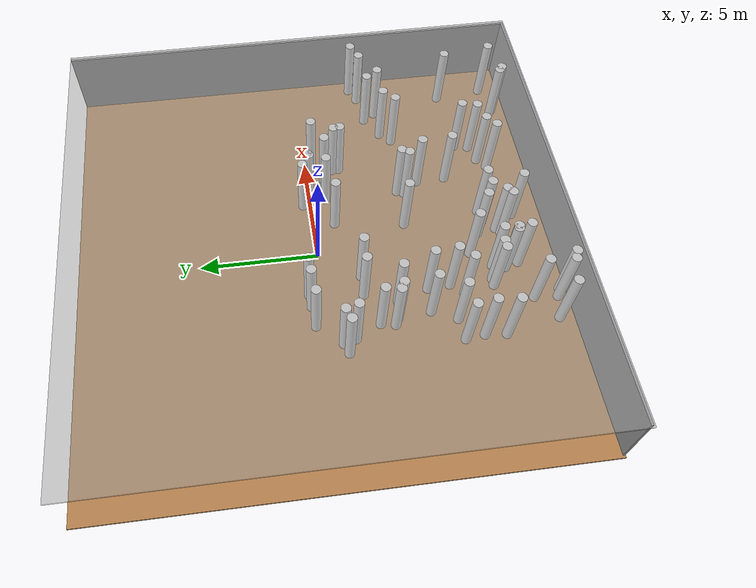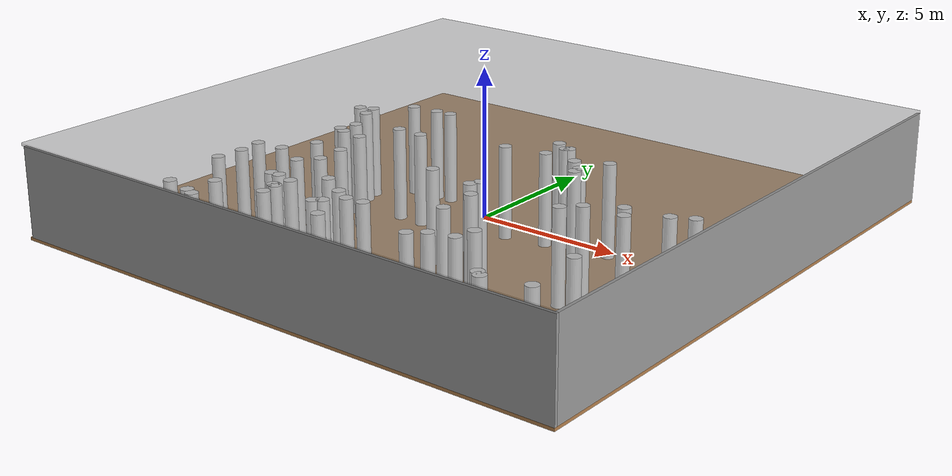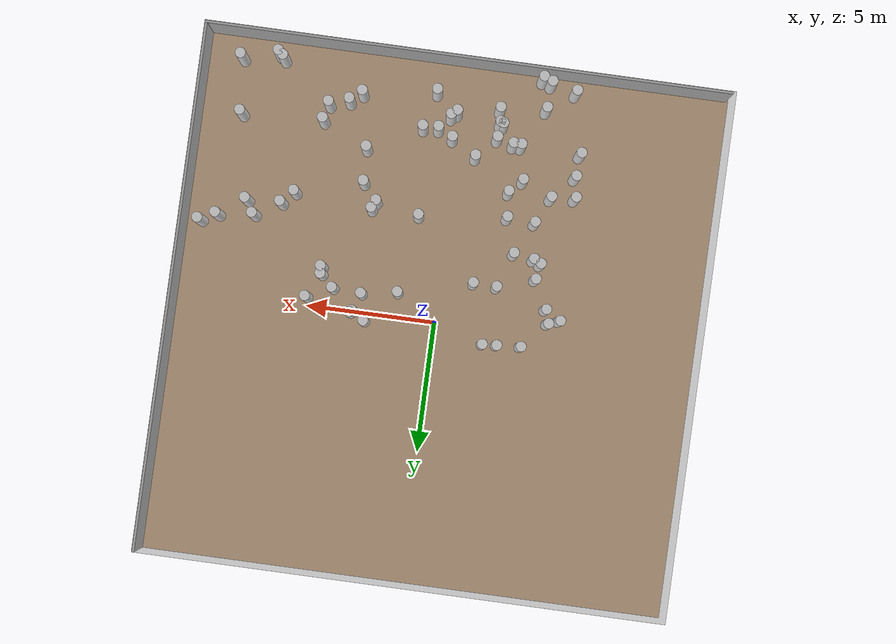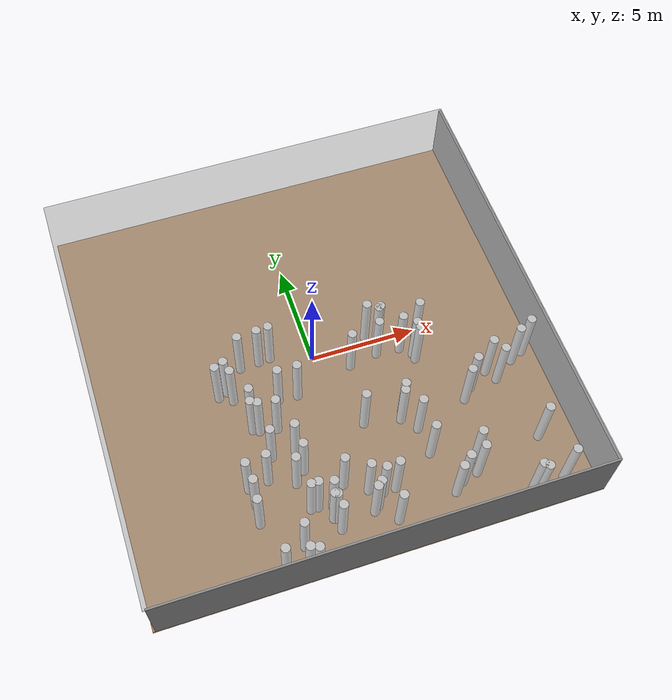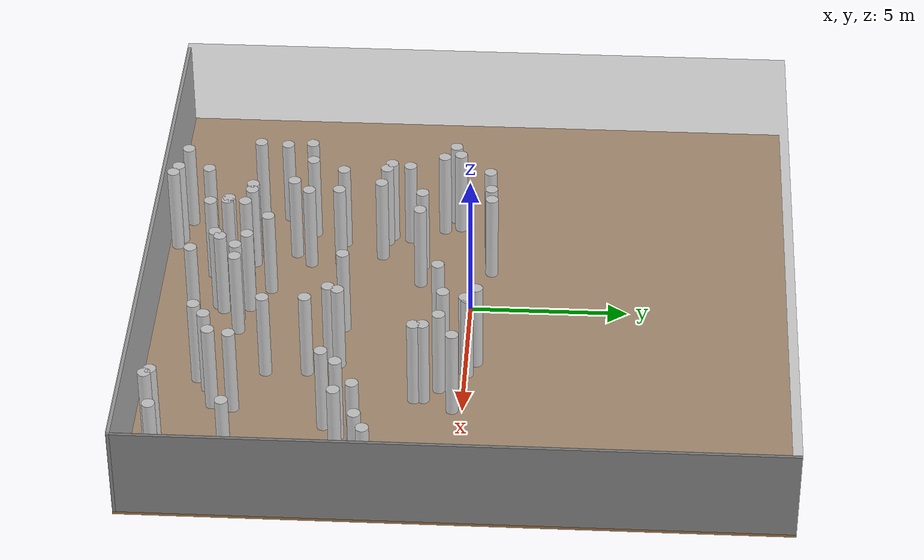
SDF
<sdf version="1.5">
 <world name="default">
  <include><uri>model://sun</uri></include>
  <model name="box_1">
   <pose>0.04999999999999982 -10.05 1.5  0 0 0</pose>
   <static>true</static>
   <link name="link">
    <collision name="collision">
     <geometry><box><size>20.1 0.09999999999999964 3.0</size></box></geometry>
    </collision>
    <visual name="visual">
     <geometry><box><size>20.1 0.09999999999999964 3.0</size></box></geometry>
     <material>
      <script><name>Gazebo/Grey</name><uri>file://media/materials/scripts/gazebo.material</uri></script>
     </material>
    </visual>
   </link>
  </model>
  <model name="box_2">
   <pose>10.05 0.04999999999999982 1.5  0 0 0</pose>
   <static>true</static>
   <link name="link">
    <collision name="collision">
     <geometry><box><size>0.09999999999999964 20.1 3.0</size></box></geometry>
    </collision>
    <visual name="visual">
     <geometry><box><size>0.09999999999999964 20.1 3.0</size></box></geometry>
     <material>
      <script><name>Gazebo/Grey</name><uri>file://media/materials/scripts/gazebo.material</uri></script>
     </material>
    </visual>
   </link>
  </model>
  <model name="box_5">
   <pose>0.0 0.0 -0.05  0 0 0</pose>
   <static>true</static>
   <link name="link">
    <collision name="collision"><geometry><box><size>20.2 20.2 0.1</size></box></geometry></collision>
    <visual name="visual">
     <geometry><box><size>20.2 20.2 0.1</size></box></geometry>
     <material>
      <script><name>Gazebo/WoodFloor</name><uri>file://media/materials/scripts/gazebo.material</uri></script>
     </material>
    </visual>
   </link>
  </model>
  <model name="box_6">
   <pose>0.0 0.0 3.05  0 0 0</pose>
   <static>true</static>
   <link name="link">
    <collision name="collision">
     <geometry><box><size>20.2 20.2 0.10000000000000009</size></box></geometry>
    </collision>
    <visual name="visual">
     <geometry><box><size>20.2 20.2 0.10000000000000009</size></box></geometry>
     <material>
      <script><name>Gazebo/GreyTransparent</name><uri>file://media/materials/scripts/gazebo.material</uri></script>
     </material>
    </visual>
   </link>
  </model>
  <model name="cylinder_1">
   <pose>-4.66243172333 -5.36758389289 1.5  0 0 0</pose>
   <static>true</static>
   <link name="link">
    <collision name="collision">
     <geometry><cylinder><radius>0.2</radius><length>3.0</length></cylinder></geometry>
    </collision>
    <visual name="visual">
     <geometry><cylinder><radius>0.2</radius><length>3.0</length></cylinder></geometry>
     <material>
      <script><name>Gazebo/White</name><uri>file://media/materials/scripts/gazebo.material</uri></script>
     </material>
    </visual>
   </link>
  </model>
  <model name="cylinder_6">
   <pose>4.32921830737 -7.92791273874 1.5  0 0 0</pose>
   <static>true</static>
   <link name="link">
    <collision name="collision">
     <geometry><cylinder><radius>0.2</radius><length>3.0</length></cylinder></geometry>
    </collision>
    <visual name="visual">
     <geometry><cylinder><radius>0.2</radius><length>3.0</length></cylinder></geometry>
     <material>
      <script><name>Gazebo/White</name><uri>file://media/materials/scripts/gazebo.material</uri></script>
     </material>
    </visual>
   </link>
  </model>
  <model name="cylinder_8">
   <pose>-3.40188709646 -2.85493463166 1.5  0 0 0</pose>
   <static>true</static>
   <link name="link">
    <collision name="collision">
     <geometry><cylinder><radius>0.2</radius><length>3.0</length></cylinder></geometry>
    </collision>
    <visual name="visual">
     <geometry><cylinder><radius>0.2</radius><length>3.0</length></cylinder></geometry>
     <material>
      <script><name>Gazebo/White</name><uri>file://media/materials/scripts/gazebo.material</uri></script>
     </material>
    </visual>
   </link>
  </model>
  <model name="cylinder_11">
   <pose>7.22114570087 -9.35978023825 1.5  0 0 0</pose>
   <static>true</static>
   <link name="link">
    <collision name="collision">
     <geometry><cylinder><radius>0.2</radius><length>3.0</length></cylinder></geometry>
    </collision>
    <visual name="visual">
     <geometry><cylinder><radius>0.2</radius><length>3.0</length></cylinder></geometry>
     <material>
      <script><name>Gazebo/White</name><uri>file://media/materials/scripts/gazebo.material</uri></script>
     </material>
    </visual>
   </link>
  </model>
  <model name="cylinder_14">
   <pose>-4.56201192334 -6.16913718312 1.5  0 0 0</pose>
   <static>true</static>
   <link name="link">
    <collision name="collision">
     <geometry><cylinder><radius>0.2</radius><length>3.0</length></cylinder></geometry>
    </collision>
    <visual name="visual">
     <geometry><cylinder><radius>0.2</radius><length>3.0</length></cylinder></geometry>
     <material>
      <script><name>Gazebo/White</name><uri>file://media/materials/scripts/gazebo.material</uri></script>
     </material>
    </visual>
   </link>
  </model>
  <model name="cylinder_19">
   <pose>3.14257789734 -0.00227278770985 1.5  0 0 0</pose>
   <static>true</static>
   <link name="link">
    <collision name="collision">
     <geometry><cylinder><radius>0.2</radius><length>3.0</length></cylinder></geometry>
    </collision>
    <visual name="visual">
     <geometry><cylinder><radius>0.2</radius><length>3.0</length></cylinder></geometry>
     <material>
      <script><name>Gazebo/White</name><uri>file://media/materials/scripts/gazebo.material</uri></script>
     </material>
    </visual>
   </link>
  </model>
  <model name="cylinder_20">
   <pose>8.61983563259 -9.05113959031 1.5  0 0 0</pose>
   <static>true</static>
   <link name="link">
    <collision name="collision">
     <geometry><cylinder><radius>0.2</radius><length>3.0</length></cylinder></geometry>
    </collision>
    <visual name="visual">
     <geometry><cylinder><radius>0.2</radius><length>3.0</length></cylinder></geometry>
     <material>
      <script><name>Gazebo/White</name><uri>file://media/materials/scripts/gazebo.material</uri></script>
     </material>
    </visual>
   </link>
  </model>
  <model name="cylinder_22">
   <pose>7.72255220808 -3.67734111971 1.5  0 0 0</pose>
   <static>true</static>
   <link name="link">
    <collision name="collision">
     <geometry><cylinder><radius>0.2</radius><length>3.0</length></cylinder></geometry>
    </collision>
    <visual name="visual">
     <geometry><cylinder><radius>0.2</radius><length>3.0</length></cylinder></geometry>
     <material>
      <script><name>Gazebo/White</name><uri>file://media/materials/scripts/gazebo.material</uri></script>
     </material>
    </visual>
   </link>
  </model>
  <model name="cylinder_24">
   <pose>-2.11901545174 -5.2703255166 1.5  0 0 0</pose>
   <static>true</static>
   <link name="link">
    <collision name="collision">
     <geometry><cylinder><radius>0.2</radius><length>3.0</length></cylinder></geometry>
    </collision>
    <visual name="visual">
     <geometry><cylinder><radius>0.2</radius><length>3.0</length></cylinder></geometry>
     <material>
      <script><name>Gazebo/White</name><uri>file://media/materials/scripts/gazebo.material</uri></script>
     </material>
    </visual>
   </link>
  </model>
  <model name="cylinder_25">
   <pose>3.8813494245 -8.28580532006 1.5  0 0 0</pose>
   <static>true</static>
   <link name="link">
    <collision name="collision">
     <geometry><cylinder><radius>0.2</radius><length>3.0</length></cylinder></geometry>
    </collision>
    <visual name="visual">
     <geometry><cylinder><radius>0.2</radius><length>3.0</length></cylinder></geometry>
     <material>
      <script><name>Gazebo/White</name><uri>file://media/materials/scripts/gazebo.material</uri></script>
     </material>
    </visual>
   </link>
  </model>
  <model name="cylinder_29">
   <pose>0.215602446316 -8.02795895449 1.5  0 0 0</pose>
   <static>true</static>
   <link name="link">
    <collision name="collision">
     <geometry><cylinder><radius>0.2</radius><length>3.0</length></cylinder></geometry>
    </collision>
    <visual name="visual">
     <geometry><cylinder><radius>0.2</radius><length>3.0</length></cylinder></geometry>
     <material>
      <script><name>Gazebo/White</name><uri>file://media/materials/scripts/gazebo.material</uri></script>
     </material>
    </visual>
   </link>
  </model>
  <model name="cylinder_32">
   <pose>-3.20127014619 -9.59197432469 1.5  0 0 0</pose>
   <static>true</static>
   <link name="link">
    <collision name="collision">
     <geometry><cylinder><radius>0.2</radius><length>3.0</length></cylinder></geometry>
    </collision>
    <visual name="visual">
     <geometry><cylinder><radius>0.2</radius><length>3.0</length></cylinder></geometry>
     <material>
      <script><name>Gazebo/White</name><uri>file://media/materials/scripts/gazebo.material</uri></script>
     </material>
    </visual>
   </link>
  </model>
  <model name="cylinder_38">
   <pose>8.75683538604 -2.98014474971 1.5  0 0 0</pose>
   <static>true</static>
   <link name="link">
    <collision name="collision">
     <geometry><cylinder><radius>0.2</radius><length>3.0</length></cylinder></geometry>
    </collision>
    <visual name="visual">
     <geometry><cylinder><radius>0.2</radius><length>3.0</length></cylinder></geometry>
     <material>
      <script><name>Gazebo/White</name><uri>file://media/materials/scripts/gazebo.material</uri></script>
     </material>
    </visual>
   </link>
  </model>
  <model name="cylinder_40">
   <pose>-2.44058042826 0.564239685322 1.5  0 0 0</pose>
   <static>true</static>
   <link name="link">
    <collision name="collision">
     <geometry><cylinder><radius>0.2</radius><length>3.0</length></cylinder></geometry>
    </collision>
    <visual name="visual">
     <geometry><cylinder><radius>0.2</radius><length>3.0</length></cylinder></geometry>
     <material>
      <script><name>Gazebo/White</name><uri>file://media/materials/scripts/gazebo.material</uri></script>
     </material>
    </visual>
   </link>
  </model>
  <model name="cylinder_41">
   <pose>-1.42372645824 -7.24630831055 1.5  0 0 0</pose>
   <static>true</static>
   <link name="link">
    <collision name="collision">
     <geometry><cylinder><radius>0.2</radius><length>3.0</length></cylinder></geometry>
    </collision>
    <visual name="visual">
     <geometry><cylinder><radius>0.2</radius><length>3.0</length></cylinder></geometry>
     <material>
      <script><name>Gazebo/White</name><uri>file://media/materials/scripts/gazebo.material</uri></script>
     </material>
    </visual>
   </link>
  </model>
  <model name="cylinder_51">
   <pose>-1.2532635501 -1.66249641853 1.5  0 0 0</pose>
   <static>true</static>
   <link name="link">
    <collision name="collision">
     <geometry><cylinder><radius>0.2</radius><length>3.0</length></cylinder></geometry>
    </collision>
    <visual name="visual">
     <geometry><cylinder><radius>0.2</radius><length>3.0</length></cylinder></geometry>
     <material>
      <script><name>Gazebo/White</name><uri>file://media/materials/scripts/gazebo.material</uri></script>
     </material>
    </visual>
   </link>
  </model>
  <model name="cylinder_52">
   <pose>-4.26414238094 -0.504776513904 1.5  0 0 0</pose>
   <static>true</static>
   <link name="link">
    <collision name="collision">
     <geometry><cylinder><radius>0.2</radius><length>3.0</length></cylinder></geometry>
    </collision>
    <visual name="visual">
     <geometry><cylinder><radius>0.2</radius><length>3.0</length></cylinder></geometry>
     <material>
      <script><name>Gazebo/White</name><uri>file://media/materials/scripts/gazebo.material</uri></script>
     </material>
    </visual>
   </link>
  </model>
  <model name="cylinder_53">
   <pose>-2.35902708184 -7.08958310026 1.5  0 0 0</pose>
   <static>true</static>
   <link name="link">
    <collision name="collision">
     <geometry><cylinder><radius>0.2</radius><length>3.0</length></cylinder></geometry>
    </collision>
    <visual name="visual">
     <geometry><cylinder><radius>0.2</radius><length>3.0</length></cylinder></geometry>
     <material>
      <script><name>Gazebo/White</name><uri>file://media/materials/scripts/gazebo.material</uri></script>
     </material>
    </visual>
   </link>
  </model>
  <model name="cylinder_60">
   <pose>5.93662151583 -4.20188149617 1.5  0 0 0</pose>
   <static>true</static>
   <link name="link">
    <collision name="collision">
     <geometry><cylinder><radius>0.2</radius><length>3.0</length></cylinder></geometry>
    </collision>
    <visual name="visual">
     <geometry><cylinder><radius>0.2</radius><length>3.0</length></cylinder></geometry>
     <material>
      <script><name>Gazebo/White</name><uri>file://media/materials/scripts/gazebo.material</uri></script>
     </material>
    </visual>
   </link>
  </model>
  <model name="cylinder_61">
   <pose>-1.39293129773 -8.35965542722 1.5  0 0 0</pose>
   <static>true</static>
   <link name="link">
    <collision name="collision">
     <geometry><cylinder><radius>0.2</radius><length>3.0</length></cylinder></geometry>
    </collision>
    <visual name="visual">
     <geometry><cylinder><radius>0.2</radius><length>3.0</length></cylinder></geometry>
     <material>
      <script><name>Gazebo/White</name><uri>file://media/materials/scripts/gazebo.material</uri></script>
     </material>
    </visual>
   </link>
  </model>
  <model name="cylinder_65">
   <pose>8.36405707521 -6.9270664571 1.5  0 0 0</pose>
   <static>true</static>
   <link name="link">
    <collision name="collision">
     <geometry><cylinder><radius>0.2</radius><length>3.0</length></cylinder></geometry>
    </collision>
    <visual name="visual">
     <geometry><cylinder><radius>0.2</radius><length>3.0</length></cylinder></geometry>
     <material>
      <script><name>Gazebo/White</name><uri>file://media/materials/scripts/gazebo.material</uri></script>
     </material>
    </visual>
   </link>
  </model>
  <model name="cylinder_68">
   <pose>-3.68367282887 -2.7081263899 1.5  0 0 0</pose>
   <static>true</static>
   <link name="link">
    <collision name="collision">
     <geometry><cylinder><radius>0.2</radius><length>3.0</length></cylinder></geometry>
    </collision>
    <visual name="visual">
     <geometry><cylinder><radius>0.2</radius><length>3.0</length></cylinder></geometry>
     <material>
      <script><name>Gazebo/White</name><uri>file://media/materials/scripts/gazebo.material</uri></script>
     </material>
    </visual>
   </link>
  </model>
  <model name="cylinder_69">
   <pose>-4.64159997635 -7.05358247951 1.5  0 0 0</pose>
   <static>true</static>
   <link name="link">
    <collision name="collision">
     <geometry><cylinder><radius>0.2</radius><length>3.0</length></cylinder></geometry>
    </collision>
    <visual name="visual">
     <geometry><cylinder><radius>0.2</radius><length>3.0</length></cylinder></geometry>
     <material>
      <script><name>Gazebo/White</name><uri>file://media/materials/scripts/gazebo.material</uri></script>
     </material>
    </visual>
   </link>
  </model>
  <model name="cylinder_72">
   <pose>-1.89613689852 0.59798062667 1.5  0 0 0</pose>
   <static>true</static>
   <link name="link">
    <collision name="collision">
     <geometry><cylinder><radius>0.2</radius><length>3.0</length></cylinder></geometry>
    </collision>
    <visual name="visual">
     <geometry><cylinder><radius>0.2</radius><length>3.0</length></cylinder></geometry>
     <material>
      <script><name>Gazebo/White</name><uri>file://media/materials/scripts/gazebo.material</uri></script>
     </material>
    </visual>
   </link>
  </model>
  <model name="cylinder_73">
   <pose>0.84236089501 -7.33055041698 1.5  0 0 0</pose>
   <static>true</static>
   <link name="link">
    <collision name="collision">
     <geometry><cylinder><radius>0.2</radius><length>3.0</length></cylinder></geometry>
    </collision>
    <visual name="visual">
     <geometry><cylinder><radius>0.2</radius><length>3.0</length></cylinder></geometry>
     <material>
      <script><name>Gazebo/White</name><uri>file://media/materials/scripts/gazebo.material</uri></script>
     </material>
    </visual>
   </link>
  </model>
  <model name="cylinder_74">
   <pose>1.54818226039 -0.932882312319 1.5  0 0 0</pose>
   <static>true</static>
   <link name="link">
    <collision name="collision">
     <geometry><cylinder><radius>0.2</radius><length>3.0</length></cylinder></geometry>
    </collision>
    <visual name="visual">
     <geometry><cylinder><radius>0.2</radius><length>3.0</length></cylinder></geometry>
     <material>
      <script><name>Gazebo/White</name><uri>file://media/materials/scripts/gazebo.material</uri></script>
     </material>
    </visual>
   </link>
  </model>
  <model name="cylinder_75">
   <pose>0.275458119163 -7.01990695729 1.5  0 0 0</pose>
   <static>true</static>
   <link name="link">
    <collision name="collision">
     <geometry><cylinder><radius>0.2</radius><length>3.0</length></cylinder></geometry>
    </collision>
    <visual name="visual">
     <geometry><cylinder><radius>0.2</radius><length>3.0</length></cylinder></geometry>
     <material>
      <script><name>Gazebo/White</name><uri>file://media/materials/scripts/gazebo.material</uri></script>
     </material>
    </visual>
   </link>
  </model>
  <model name="cylinder_76">
   <pose>3.45328562849 -6.21930234949 1.5  0 0 0</pose>
   <static>true</static>
   <link name="link">
    <collision name="collision">
     <geometry><cylinder><radius>0.2</radius><length>3.0</length></cylinder></geometry>
    </collision>
    <visual name="visual">
     <geometry><cylinder><radius>0.2</radius><length>3.0</length></cylinder></geometry>
     <material>
      <script><name>Gazebo/White</name><uri>file://media/materials/scripts/gazebo.material</uri></script>
     </material>
    </visual>
   </link>
  </model>
  <model name="cylinder_79">
   <pose>4.54385499126 -1.51497866672 1.5  0 0 0</pose>
   <static>true</static>
   <link name="link">
    <collision name="collision">
     <geometry><cylinder><radius>0.2</radius><length>3.0</length></cylinder></geometry>
    </collision>
    <visual name="visual">
     <geometry><cylinder><radius>0.2</radius><length>3.0</length></cylinder></geometry>
     <material>
      <script><name>Gazebo/White</name><uri>file://media/materials/scripts/gazebo.material</uri></script>
     </material>
    </visual>
   </link>
  </model>
  <model name="cylinder_82">
   <pose>-3.13034049653 -8.59013685334 1.5  0 0 0</pose>
   <static>true</static>
   <link name="link">
    <collision name="collision">
     <geometry><cylinder><radius>0.2</radius><length>3.0</length></cylinder></geometry>
    </collision>
    <visual name="visual">
     <geometry><cylinder><radius>0.2</radius><length>3.0</length></cylinder></geometry>
     <material>
      <script><name>Gazebo/White</name><uri>file://media/materials/scripts/gazebo.material</uri></script>
     </material>
    </visual>
   </link>
  </model>
  <model name="cylinder_84">
   <pose>1.43707602405 -7.28614234453 1.5  0 0 0</pose>
   <static>true</static>
   <link name="link">
    <collision name="collision">
     <geometry><cylinder><radius>0.2</radius><length>3.0</length></cylinder></geometry>
    </collision>
    <visual name="visual">
     <geometry><cylinder><radius>0.2</radius><length>3.0</length></cylinder></geometry>
     <material>
      <script><name>Gazebo/White</name><uri>file://media/materials/scripts/gazebo.material</uri></script>
     </material>
    </visual>
   </link>
  </model>
  <model name="cylinder_86">
   <pose>-4.11676966598 -1.02720166911 1.5  0 0 0</pose>
   <static>true</static>
   <link name="link">
    <collision name="collision">
     <geometry><cylinder><radius>0.2</radius><length>3.0</length></cylinder></geometry>
    </collision>
    <visual name="visual">
     <geometry><cylinder><radius>0.2</radius><length>3.0</length></cylinder></geometry>
     <material>
      <script><name>Gazebo/White</name><uri>file://media/materials/scripts/gazebo.material</uri></script>
     </material>
    </visual>
   </link>
  </model>
  <model name="cylinder_94">
   <pose>4.98231811079 -0.310634673204 1.5  0 0 0</pose>
   <static>true</static>
   <link name="link">
    <collision name="collision">
     <geometry><cylinder><radius>0.2</radius><length>3.0</length></cylinder></geometry>
    </collision>
    <visual name="visual">
     <geometry><cylinder><radius>0.2</radius><length>3.0</length></cylinder></geometry>
     <material>
      <script><name>Gazebo/White</name><uri>file://media/materials/scripts/gazebo.material</uri></script>
     </material>
    </visual>
   </link>
  </model>
  <model name="cylinder_95">
   <pose>-1.46179661731 -7.82175461754 1.5  0 0 0</pose>
   <static>true</static>
   <link name="link">
    <collision name="collision">
     <geometry><cylinder><radius>0.2</radius><length>3.0</length></cylinder></geometry>
    </collision>
    <visual name="visual">
     <geometry><cylinder><radius>0.2</radius><length>3.0</length></cylinder></geometry>
     <material>
      <script><name>Gazebo/White</name><uri>file://media/materials/scripts/gazebo.material</uri></script>
     </material>
    </visual>
   </link>
  </model>
  <model name="cylinder_97">
   <pose>5.0922501446 -7.70909720808 1.5  0 0 0</pose>
   <static>true</static>
   <link name="link">
    <collision name="collision">
     <geometry><cylinder><radius>0.2</radius><length>3.0</length></cylinder></geometry>
    </collision>
    <visual name="visual">
     <geometry><cylinder><radius>0.2</radius><length>3.0</length></cylinder></geometry>
     <material>
      <script><name>Gazebo/White</name><uri>file://media/materials/scripts/gazebo.material</uri></script>
     </material>
    </visual>
   </link>
  </model>
  <model name="cylinder_107">
   <pose>-2.19653697167 -4.3052434221 1.5  0 0 0</pose>
   <static>true</static>
   <link name="link">
    <collision name="collision">
     <geometry><cylinder><radius>0.2</radius><length>3.0</length></cylinder></geometry>
    </collision>
    <visual name="visual">
     <geometry><cylinder><radius>0.2</radius><length>3.0</length></cylinder></geometry>
     <material>
      <script><name>Gazebo/White</name><uri>file://media/materials/scripts/gazebo.material</uri></script>
     </material>
    </visual>
   </link>
  </model>
  <model name="cylinder_109">
   <pose>-1.57028803987 -7.77947915391 1.5  0 0 0</pose>
   <static>true</static>
   <link name="link">
    <collision name="collision">
     <geometry><cylinder><radius>0.2</radius><length>3.0</length></cylinder></geometry>
    </collision>
    <visual name="visual">
     <geometry><cylinder><radius>0.2</radius><length>3.0</length></cylinder></geometry>
     <material>
      <script><name>Gazebo/White</name><uri>file://media/materials/scripts/gazebo.material</uri></script>
     </material>
    </visual>
   </link>
  </model>
  <model name="cylinder_110">
   <pose>2.95473231339 -3.94717937411 1.5  0 0 0</pose>
   <static>true</static>
   <link name="link">
    <collision name="collision">
     <geometry><cylinder><radius>0.2</radius><length>3.0</length></cylinder></geometry>
    </collision>
    <visual name="visual">
     <geometry><cylinder><radius>0.2</radius><length>3.0</length></cylinder></geometry>
     <material>
      <script><name>Gazebo/White</name><uri>file://media/materials/scripts/gazebo.material</uri></script>
     </material>
    </visual>
   </link>
  </model>
  <model name="cylinder_112">
   <pose>2.90834435788 -0.700090151707 1.5  0 0 0</pose>
   <static>true</static>
   <link name="link">
    <collision name="collision">
     <geometry><cylinder><radius>0.2</radius><length>3.0</length></cylinder></geometry>
    </collision>
    <visual name="visual">
     <geometry><cylinder><radius>0.2</radius><length>3.0</length></cylinder></geometry>
     <material>
      <script><name>Gazebo/White</name><uri>file://media/materials/scripts/gazebo.material</uri></script>
     </material>
    </visual>
   </link>
  </model>
  <model name="cylinder_119">
   <pose>-3.74357942549 -5.2638809895 1.5  0 0 0</pose>
   <static>true</static>
   <link name="link">
    <collision name="collision">
     <geometry><cylinder><radius>0.2</radius><length>3.0</length></cylinder></geometry>
    </collision>
    <visual name="visual">
     <geometry><cylinder><radius>0.2</radius><length>3.0</length></cylinder></geometry>
     <material>
      <script><name>Gazebo/White</name><uri>file://media/materials/scripts/gazebo.material</uri></script>
     </material>
    </visual>
   </link>
  </model>
  <model name="cylinder_121">
   <pose>7.38366808684 -3.15056002181 1.5  0 0 0</pose>
   <static>true</static>
   <link name="link">
    <collision name="collision">
     <geometry><cylinder><radius>0.2</radius><length>3.0</length></cylinder></geometry>
    </collision>
    <visual name="visual">
     <geometry><cylinder><radius>0.2</radius><length>3.0</length></cylinder></geometry>
     <material>
      <script><name>Gazebo/White</name><uri>file://media/materials/scripts/gazebo.material</uri></script>
     </material>
    </visual>
   </link>
  </model>
  <model name="cylinder_122">
   <pose>2.680250804 0.320716267652 1.5  0 0 0</pose>
   <static>true</static>
   <link name="link">
    <collision name="collision">
     <geometry><cylinder><radius>0.2</radius><length>3.0</length></cylinder></geometry>
    </collision>
    <visual name="visual">
     <geometry><cylinder><radius>0.2</radius><length>3.0</length></cylinder></geometry>
     <material>
      <script><name>Gazebo/White</name><uri>file://media/materials/scripts/gazebo.material</uri></script>
     </material>
    </visual>
   </link>
  </model>
  <model name="cylinder_123">
   <pose>-2.14945990325 -1.63255041937 1.5  0 0 0</pose>
   <static>true</static>
   <link name="link">
    <collision name="collision">
     <geometry><cylinder><radius>0.2</radius><length>3.0</length></cylinder></geometry>
    </collision>
    <visual name="visual">
     <geometry><cylinder><radius>0.2</radius><length>3.0</length></cylinder></geometry>
     <material>
      <script><name>Gazebo/White</name><uri>file://media/materials/scripts/gazebo.material</uri></script>
     </material>
    </visual>
   </link>
  </model>
  <model name="cylinder_125">
   <pose>-2.86103797186 -9.72861003272 1.5  0 0 0</pose>
   <static>true</static>
   <link name="link">
    <collision name="collision">
     <geometry><cylinder><radius>0.2</radius><length>3.0</length></cylinder></geometry>
    </collision>
    <visual name="visual">
     <geometry><cylinder><radius>0.2</radius><length>3.0</length></cylinder></geometry>
     <material>
      <script><name>Gazebo/White</name><uri>file://media/materials/scripts/gazebo.material</uri></script>
     </material>
    </visual>
   </link>
  </model>
  <model name="cylinder_126">
   <pose>-2.59858941449 -5.7775731433 1.5  0 0 0</pose>
   <static>true</static>
   <link name="link">
    <collision name="collision">
     <geometry><cylinder><radius>0.2</radius><length>3.0</length></cylinder></geometry>
    </collision>
    <visual name="visual">
     <geometry><cylinder><radius>0.2</radius><length>3.0</length></cylinder></geometry>
     <material>
      <script><name>Gazebo/White</name><uri>file://media/materials/scripts/gazebo.material</uri></script>
     </material>
    </visual>
   </link>
  </model>
  <model name="cylinder_127">
   <pose>-2.04919668315 -7.08703395037 1.5  0 0 0</pose>
   <static>true</static>
   <link name="link">
    <collision name="collision">
     <geometry><cylinder><radius>0.2</radius><length>3.0</length></cylinder></geometry>
    </collision>
    <visual name="visual">
     <geometry><cylinder><radius>0.2</radius><length>3.0</length></cylinder></geometry>
     <material>
      <script><name>Gazebo/White</name><uri>file://media/materials/scripts/gazebo.material</uri></script>
     </material>
    </visual>
   </link>
  </model>
  <model name="cylinder_132">
   <pose>-3.35228175085 0.493158793516 1.5  0 0 0</pose>
   <static>true</static>
   <link name="link">
    <collision name="collision">
     <geometry><cylinder><radius>0.2</radius><length>3.0</length></cylinder></geometry>
    </collision>
    <visual name="visual">
     <geometry><cylinder><radius>0.2</radius><length>3.0</length></cylinder></geometry>
     <material>
      <script><name>Gazebo/White</name><uri>file://media/materials/scripts/gazebo.material</uri></script>
     </material>
    </visual>
   </link>
  </model>
  <model name="cylinder_133">
   <pose>-0.683363580279 -6.43758691234 1.5  0 0 0</pose>
   <static>true</static>
   <link name="link">
    <collision name="collision">
     <geometry><cylinder><radius>0.2</radius><length>3.0</length></cylinder></geometry>
    </collision>
    <visual name="visual">
     <geometry><cylinder><radius>0.2</radius><length>3.0</length></cylinder></geometry>
     <material>
      <script><name>Gazebo/White</name><uri>file://media/materials/scripts/gazebo.material</uri></script>
     </material>
    </visual>
   </link>
  </model>
  <model name="cylinder_137">
   <pose>5.22977611139 -7.06295703132 1.5  0 0 0</pose>
   <static>true</static>
   <link name="link">
    <collision name="collision">
     <geometry><cylinder><radius>0.2</radius><length>3.0</length></cylinder></geometry>
    </collision>
    <visual name="visual">
     <geometry><cylinder><radius>0.2</radius><length>3.0</length></cylinder></geometry>
     <material>
      <script><name>Gazebo/White</name><uri>file://media/materials/scripts/gazebo.material</uri></script>
     </material>
    </visual>
   </link>
  </model>
  <model name="cylinder_139">
   <pose>-3.26097260911 -4.23920328827 1.5  0 0 0</pose>
   <static>true</static>
   <link name="link">
    <collision name="collision">
     <geometry><cylinder><radius>0.2</radius><length>3.0</length></cylinder></geometry>
    </collision>
    <visual name="visual">
     <geometry><cylinder><radius>0.2</radius><length>3.0</length></cylinder></geometry>
     <material>
      <script><name>Gazebo/White</name><uri>file://media/materials/scripts/gazebo.material</uri></script>
     </material>
    </visual>
   </link>
  </model>
  <model name="cylinder_142">
   <pose>3.23706850954 0.0621420250935 1.5  0 0 0</pose>
   <static>true</static>
   <link name="link">
    <collision name="collision">
     <geometry><cylinder><radius>0.2</radius><length>3.0</length></cylinder></geometry>
    </collision>
    <visual name="visual">
     <geometry><cylinder><radius>0.2</radius><length>3.0</length></cylinder></geometry>
     <material>
      <script><name>Gazebo/White</name><uri>file://media/materials/scripts/gazebo.material</uri></script>
     </material>
    </visual>
   </link>
  </model>
  <model name="cylinder_145">
   <pose>9.39344121939 -2.68876192808 1.5  0 0 0</pose>
   <static>true</static>
   <link name="link">
    <collision name="collision">
     <geometry><cylinder><radius>0.2</radius><length>3.0</length></cylinder></geometry>
    </collision>
    <visual name="visual">
     <geometry><cylinder><radius>0.2</radius><length>3.0</length></cylinder></geometry>
     <material>
      <script><name>Gazebo/White</name><uri>file://media/materials/scripts/gazebo.material</uri></script>
     </material>
    </visual>
   </link>
  </model>
  <model name="cylinder_149">
   <pose>4.02227292712 -0.768569717311 1.5  0 0 0</pose>
   <static>true</static>
   <link name="link">
    <collision name="collision">
     <geometry><cylinder><radius>0.2</radius><length>3.0</length></cylinder></geometry>
    </collision>
    <visual name="visual">
     <geometry><cylinder><radius>0.2</radius><length>3.0</length></cylinder></geometry>
     <material>
      <script><name>Gazebo/White</name><uri>file://media/materials/scripts/gazebo.material</uri></script>
     </material>
    </visual>
   </link>
  </model>
  <model name="cylinder_157">
   <pose>6.40115322343 -3.72882733279 1.5  0 0 0</pose>
   <static>true</static>
   <link name="link">
    <collision name="collision">
     <geometry><cylinder><radius>0.2</radius><length>3.0</length></cylinder></geometry>
    </collision>
    <visual name="visual">
     <geometry><cylinder><radius>0.2</radius><length>3.0</length></cylinder></geometry>
     <material>
      <script><name>Gazebo/White</name><uri>file://media/materials/scripts/gazebo.material</uri></script>
     </material>
    </visual>
   </link>
  </model>
  <model name="cylinder_169">
   <pose>-4.16640923269 -9.37255323911 1.5  0 0 0</pose>
   <static>true</static>
   <link name="link">
    <collision name="collision">
     <geometry><cylinder><radius>0.2</radius><length>3.0</length></cylinder></geometry>
    </collision>
    <visual name="visual">
     <geometry><cylinder><radius>0.2</radius><length>3.0</length></cylinder></geometry>
     <material>
      <script><name>Gazebo/White</name><uri>file://media/materials/scripts/gazebo.material</uri></script>
     </material>
    </visual>
   </link>
  </model>
  <model name="cylinder_170">
   <pose>7.03492295869 -9.21212725884 1.5  0 0 0</pose>
   <static>true</static>
   <link name="link">
    <collision name="collision">
     <geometry><cylinder><radius>0.2</radius><length>3.0</length></cylinder></geometry>
    </collision>
    <visual name="visual">
     <geometry><cylinder><radius>0.2</radius><length>3.0</length></cylinder></geometry>
     <material>
      <script><name>Gazebo/White</name><uri>file://media/materials/scripts/gazebo.material</uri></script>
     </material>
    </visual>
   </link>
  </model>
  <model name="cylinder_171">
   <pose>4.51896988018 -1.22990117475 1.5  0 0 0</pose>
   <static>true</static>
   <link name="link">
    <collision name="collision">
     <geometry><cylinder><radius>0.2</radius><length>3.0</length></cylinder></geometry>
    </collision>
    <visual name="visual">
     <geometry><cylinder><radius>0.2</radius><length>3.0</length></cylinder></geometry>
     <material>
      <script><name>Gazebo/White</name><uri>file://media/materials/scripts/gazebo.material</uri></script>
     </material>
    </visual>
   </link>
  </model>
  <model name="cylinder_179">
   <pose>3.38253710054 -4.91906945227 1.5  0 0 0</pose>
   <static>true</static>
   <link name="link">
    <collision name="collision">
     <geometry><cylinder><radius>0.2</radius><length>3.0</length></cylinder></geometry>
    </collision>
    <visual name="visual">
     <geometry><cylinder><radius>0.2</radius><length>3.0</length></cylinder></geometry>
     <material>
      <script><name>Gazebo/White</name><uri>file://media/materials/scripts/gazebo.material</uri></script>
     </material>
    </visual>
   </link>
  </model>
  <model name="cylinder_181">
   <pose>1.06879028612 -8.71104461931 1.5  0 0 0</pose>
   <static>true</static>
   <link name="link">
    <collision name="collision">
     <geometry><cylinder><radius>0.2</radius><length>3.0</length></cylinder></geometry>
    </collision>
    <visual name="visual">
     <geometry><cylinder><radius>0.2</radius><length>3.0</length></cylinder></geometry>
     <material>
      <script><name>Gazebo/White</name><uri>file://media/materials/scripts/gazebo.material</uri></script>
     </material>
    </visual>
   </link>
  </model>
  <model name="cylinder_182">
   <pose>1.14932045205 -3.93132116418 1.5  0 0 0</pose>
   <static>true</static>
   <link name="link">
    <collision name="collision">
     <geometry><cylinder><radius>0.2</radius><length>3.0</length></cylinder></geometry>
    </collision>
    <visual name="visual">
     <geometry><cylinder><radius>0.2</radius><length>3.0</length></cylinder></geometry>
     <material>
      <script><name>Gazebo/White</name><uri>file://media/materials/scripts/gazebo.material</uri></script>
     </material>
    </visual>
   </link>
  </model>
  <model name="cylinder_190">
   <pose>2.81134697253 -4.2513255307 1.5  0 0 0</pose>
   <static>true</static>
   <link name="link">
    <collision name="collision">
     <geometry><cylinder><radius>0.2</radius><length>3.0</length></cylinder></geometry>
    </collision>
    <visual name="visual">
     <geometry><cylinder><radius>0.2</radius><length>3.0</length></cylinder></geometry>
     <material>
      <script><name>Gazebo/White</name><uri>file://media/materials/scripts/gazebo.material</uri></script>
     </material>
    </visual>
   </link>
  </model>
  <model name="cylinder_191">
   <pose>-4.6953164644 -0.672579194715 1.5  0 0 0</pose>
   <static>true</static>
   <link name="link">
    <collision name="collision">
     <geometry><cylinder><radius>0.2</radius><length>3.0</length></cylinder></geometry>
    </collision>
    <visual name="visual">
     <geometry><cylinder><radius>0.2</radius><length>3.0</length></cylinder></geometry>
     <material>
      <script><name>Gazebo/White</name><uri>file://media/materials/scripts/gazebo.material</uri></script>
     </material>
    </visual>
   </link>
  </model>
  <model name="cylinder_195">
   <pose>-3.57119487391 -2.11079416445 1.5  0 0 0</pose>
   <static>true</static>
   <link name="link">
    <collision name="collision">
     <geometry><cylinder><radius>0.2</radius><length>3.0</length></cylinder></geometry>
    </collision>
    <visual name="visual">
     <geometry><cylinder><radius>0.2</radius><length>3.0</length></cylinder></geometry>
     <material>
      <script><name>Gazebo/White</name><uri>file://media/materials/scripts/gazebo.material</uri></script>
     </material>
    </visual>
   </link>
  </model>
  <model name="cylinder_198">
   <pose>-2.62320672908 -2.98059920008 1.5  0 0 0</pose>
   <static>true</static>
   <link name="link">
    <collision name="collision">
     <geometry><cylinder><radius>0.2</radius><length>3.0</length></cylinder></geometry>
    </collision>
    <visual name="visual">
     <geometry><cylinder><radius>0.2</radius><length>3.0</length></cylinder></geometry>
     <material>
      <script><name>Gazebo/White</name><uri>file://media/materials/scripts/gazebo.material</uri></script>
     </material>
    </visual>
   </link>
  </model>
  <model name="cylinder_200">
   <pose>0.427068847312 -7.85144485081 1.5  0 0 0</pose>
   <static>true</static>
   <link name="link">
    <collision name="collision">
     <geometry><cylinder><radius>0.2</radius><length>3.0</length></cylinder></geometry>
    </collision>
    <visual name="visual">
     <geometry><cylinder><radius>0.2</radius><length>3.0</length></cylinder></geometry>
     <material>
      <script><name>Gazebo/White</name><uri>file://media/materials/scripts/gazebo.material</uri></script>
     </material>
    </visual>
   </link>
  </model>
 </world>
</sdf>
